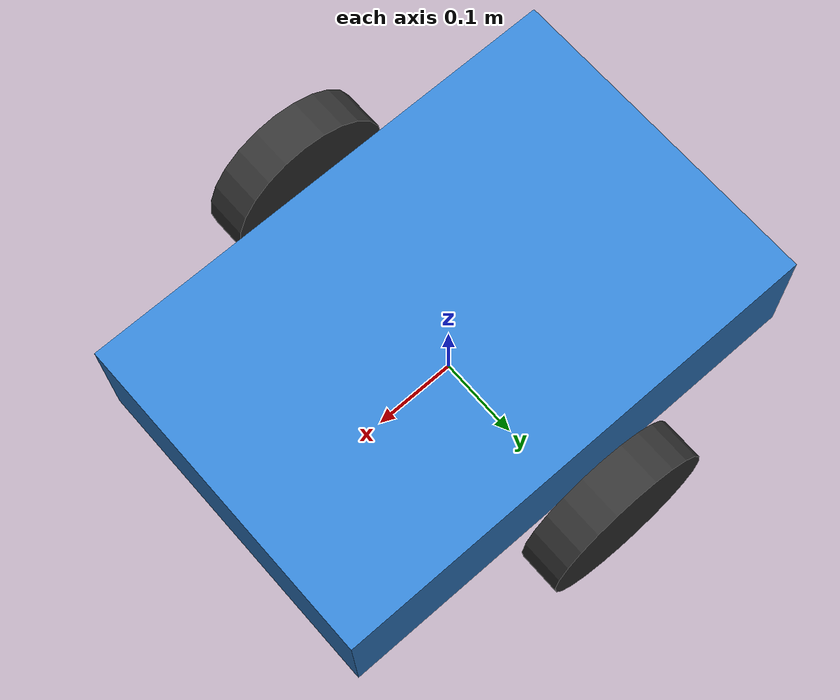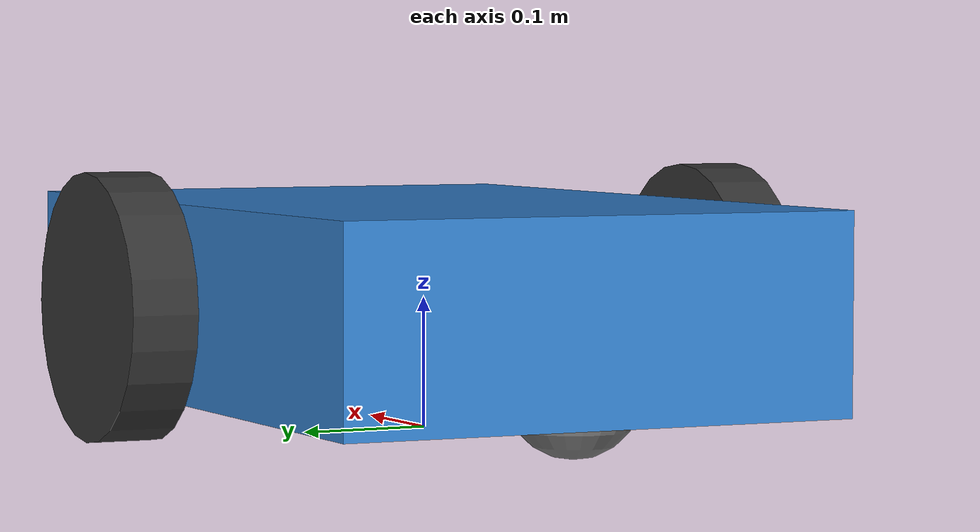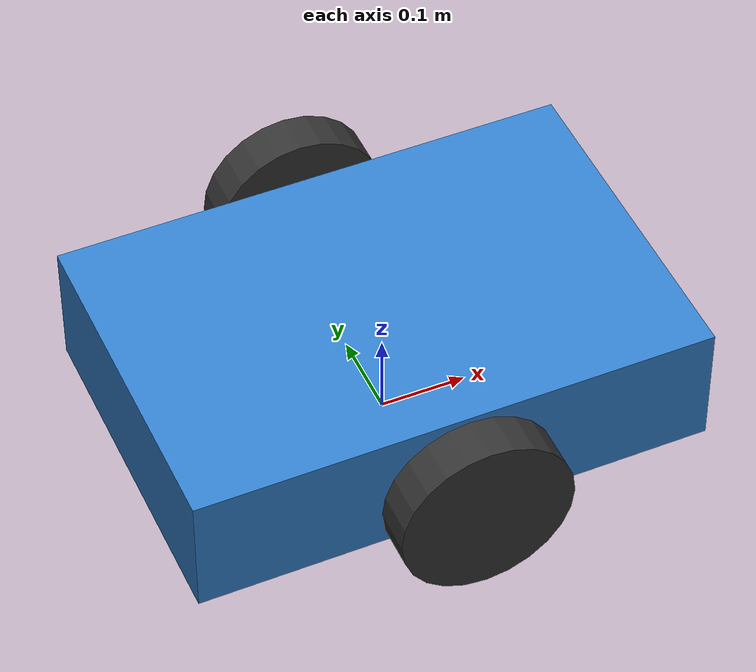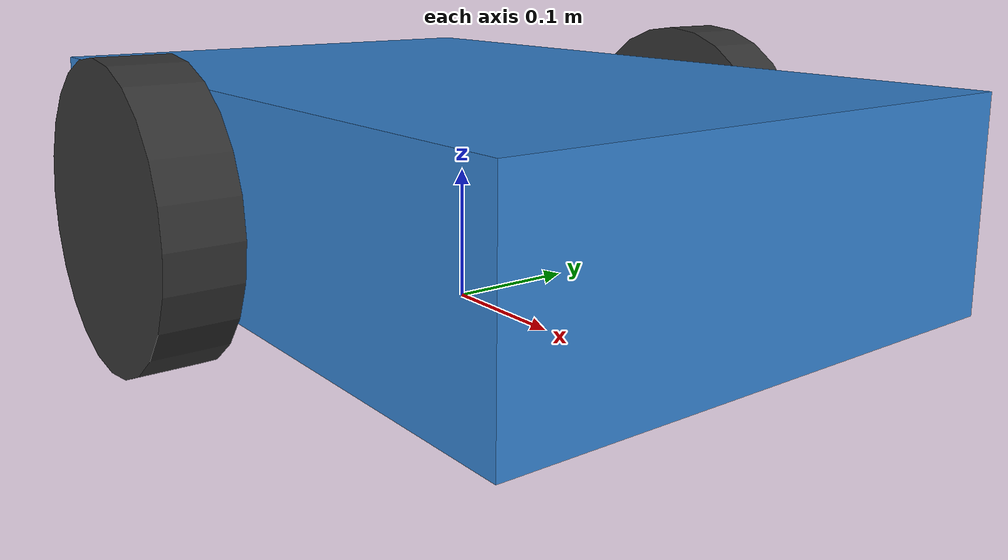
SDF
<?xml version="1.0" ?>
<sdf version="1.8">
  <model name="simple_diff_drive_robot">

    <!-- ========== BASE LINK ========== -->
    <link name="base_link">
      <!-- Position: 10cm above ground -->
      <pose>0 0 0.1 0 0 0</pose>

      <!-- Physical properties -->
      <inertial>
        <mass>10.0</mass>
        <inertia>
          <ixx>0.1</ixx>
          <iyy>0.1</iyy>
          <izz>0.1</izz>
          <ixy>0</ixy>
          <ixz>0</ixz>
          <iyz>0</iyz>
        </inertia>
      </inertial>

      <!-- Collision geometry (for physics) -->
      <collision name="base_collision">
        <geometry>
          <box>
            <size>0.6 0.4 0.15</size>
          </box>
        </geometry>
      </collision>

      <!-- Visual geometry (what you see) -->
      <visual name="base_visual">
        <geometry>
          <box>
            <size>0.6 0.4 0.15</size>
          </box>
        </geometry>
        <material>
          <ambient>0.2 0.5 0.8 1</ambient>
          <diffuse>0.2 0.5 0.8 1</diffuse>
          <specular>0.1 0.1 0.1 1</specular>
        </material>
      </visual>
    </link>

    <!-- ========== LEFT WHEEL ========== -->
    <link name="left_wheel">
      <!-- Wheel positioned to the left of base, rotated 90° -->
      <pose>0 0.25 0.1 -1.5707 0 0</pose>

      <inertial>
        <mass>1.0</mass>
        <inertia>
          <ixx>0.005</ixx>
          <iyy>0.005</iyy>
          <izz>0.005</izz>
          <ixy>0</ixy>
          <ixz>0</ixz>
          <iyz>0</iyz>
        </inertia>
      </inertial>

      <collision name="left_wheel_collision">
        <geometry>
          <cylinder>
            <radius>0.1</radius>
            <length>0.05</length>
          </cylinder>
        </geometry>
        <!-- Friction properties for realistic wheel behavior -->
        <surface>
          <friction>
            <ode>
              <mu>1.0</mu>
              <mu2>1.0</mu2>
            </ode>
          </friction>
        </surface>
      </collision>

      <visual name="left_wheel_visual">
        <geometry>
          <cylinder>
            <radius>0.1</radius>
            <length>0.05</length>
          </cylinder>
        </geometry>
        <material>
          <ambient>0.2 0.2 0.2 1</ambient>
          <diffuse>0.2 0.2 0.2 1</diffuse>
        </material>
      </visual>
    </link>

    <!-- ========== RIGHT WHEEL ========== -->
    <link name="right_wheel">
      <!-- Wheel positioned to the right of base, rotated 90° -->
      <pose>0 -0.25 0.1 -1.5707 0 0</pose>

      <inertial>
        <mass>1.0</mass>
        <inertia>
          <ixx>0.005</ixx>
          <iyy>0.005</iyy>
          <izz>0.005</izz>
          <ixy>0</ixy>
          <ixz>0</ixz>
          <iyz>0</iyz>
        </inertia>
      </inertial>

      <collision name="right_wheel_collision">
        <geometry>
          <cylinder>
            <radius>0.1</radius>
            <length>0.05</length>
          </cylinder>
        </geometry>
        <surface>
          <friction>
            <ode>
              <mu>1.0</mu>
              <mu2>1.0</mu2>
            </ode>
          </friction>
        </surface>
      </collision>

      <visual name="right_wheel_visual">
        <geometry>
          <cylinder>
            <radius>0.1</radius>
            <length>0.05</length>
          </cylinder>
        </geometry>
        <material>
          <ambient>0.2 0.2 0.2 1</ambient>
          <diffuse>0.2 0.2 0.2 1</diffuse>
        </material>
      </visual>
    </link>

    <!-- ========== CASTER WHEEL (for stability) ========== -->
    <link name="caster">
      <pose>-0.25 0 0.05 0 0 0</pose>

      <inertial>
        <mass>0.5</mass>
        <inertia>
          <ixx>0.001</ixx>
          <iyy>0.001</iyy>
          <izz>0.001</izz>
          <ixy>0</ixy>
          <ixz>0</ixz>
          <iyz>0</iyz>
        </inertia>
      </inertial>

      <collision name="caster_collision">
        <geometry>
          <sphere>
            <radius>0.05</radius>
          </sphere>
        </geometry>
        <surface>
          <friction>
            <ode>
              <mu>0.0</mu>
              <mu2>0.0</mu2>
            </ode>
          </friction>
        </surface>
      </collision>

      <visual name="caster_visual">
        <geometry>
          <sphere>
            <radius>0.05</radius>
          </sphere>
        </geometry>
        <material>
          <ambient>0.5 0.5 0.5 1</ambient>
          <diffuse>0.5 0.5 0.5 1</diffuse>
        </material>
      </visual>
    </link>

    <!-- ========== JOINTS ========== -->

    <!-- Left wheel joint (revolute = rotating) -->
    <joint name="left_wheel_joint" type="revolute">
      <parent>base_link</parent>
      <child>left_wheel</child>
      <axis>
        <xyz>0 1 0</xyz>
        <limit>
          <lower>-1e16</lower>
          <upper>1e16</upper>
        </limit>
      </axis>
    </joint>

    <!-- Right wheel joint -->
    <joint name="right_wheel_joint" type="revolute">
      <parent>base_link</parent>
      <child>right_wheel</child>
      <axis>
        <xyz>0 1 0</xyz>
        <limit>
          <lower>-1e16</lower>
          <upper>1e16</upper>
        </limit>
      </axis>
    </joint>

    <!-- Caster joint (fixed to base) -->
    <joint name="caster_joint" type="fixed">
      <parent>base_link</parent>
      <child>caster</child>
    </joint>

    <!-- ========== DIFFERENTIAL DRIVE PLUGIN ========== -->
    <!--
    This plugin listens to /cmd_vel (Twist messages) and
    controls the left and right wheels to achieve desired
    linear and angular velocities.
    -->
    <plugin
      filename="gz-sim-diff-drive-system"
      name="gz::sim::systems::DiffDrive">
      <left_joint>left_wheel_joint</left_joint>
      <right_joint>right_wheel_joint</right_joint>
      <wheel_separation>0.5</wheel_separation>
      <wheel_radius>0.1</wheel_radius>
      <odom_publish_frequency>50</odom_publish_frequency>
      <topic>/cmd_vel</topic>
      <odom_topic>/odom</odom_topic>
      <frame_id>odom</frame_id>
      <child_frame_id>base_link</child_frame_id>
    </plugin>

  </model>
</sdf>
